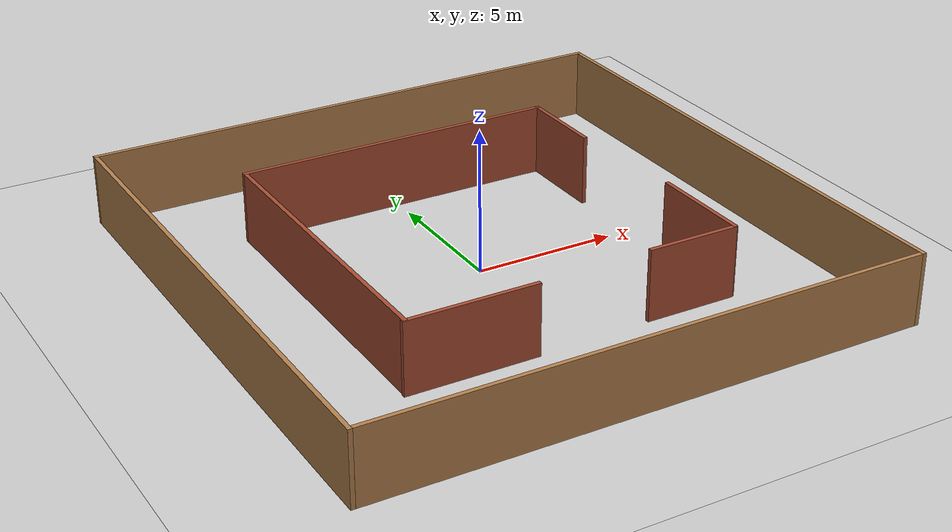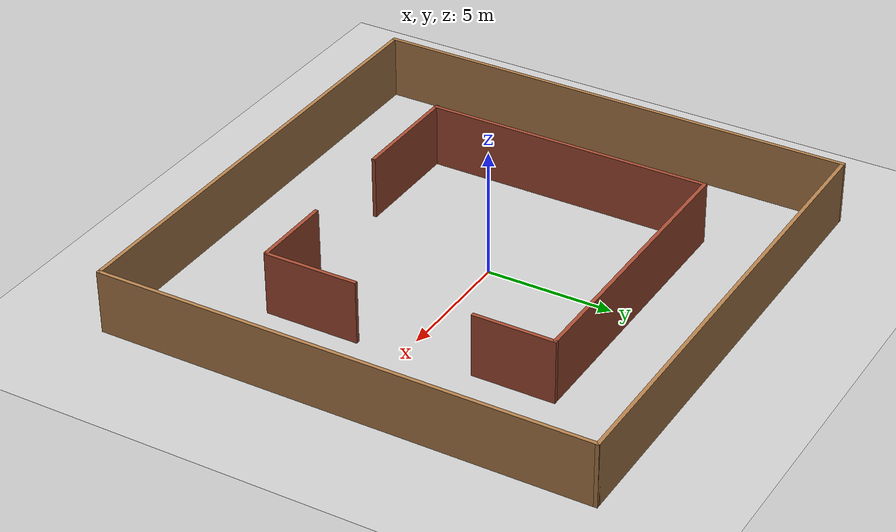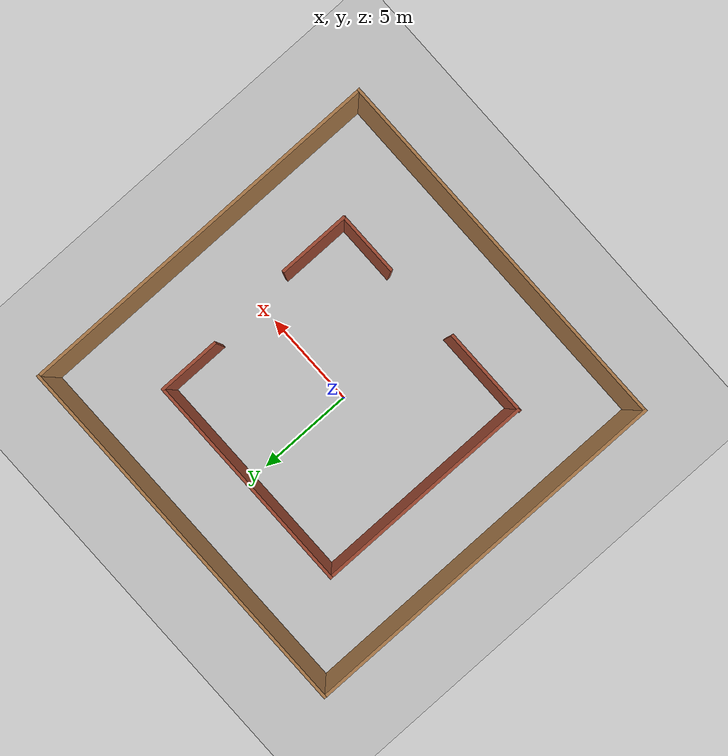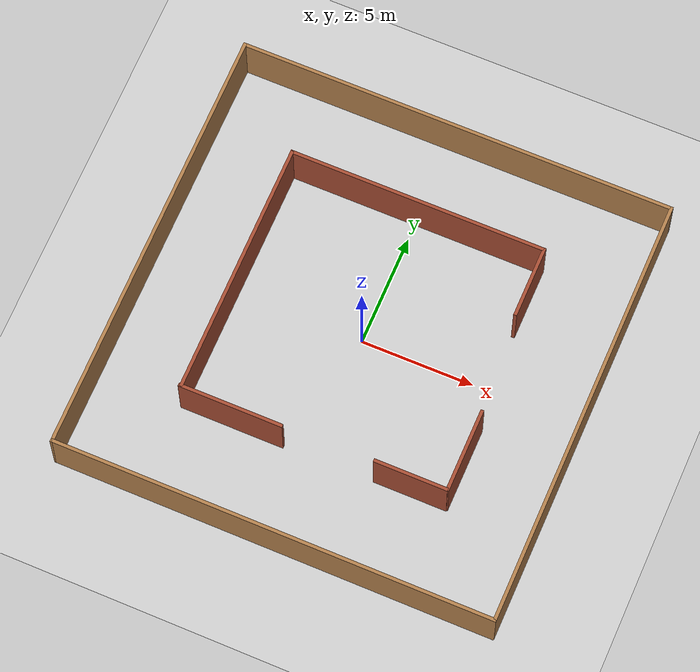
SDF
<sdf version="1.7">
 <world name="default">
  <light name="sun" type="directional">
   <pose>0 0 10 0 -0 0</pose>
   <diffuse>0.8 0.8 0.8 1</diffuse>
   <specular>0.2 0.2 0.2 1</specular>
   <attenuation>
    <range>1000</range>
    <constant>0.9</constant>
    <linear>0.01</linear>
    <quadratic>0.001</quadratic>
   </attenuation>
   <direction>-0.5 0.1 -0.9</direction>
   <spot><inner_angle>0</inner_angle><outer_angle>0</outer_angle><falloff>0</falloff></spot>
  </light>
  <model name="ground_plane">
   <static>1</static>
   <link name="link">
    <collision name="collision">
     <geometry><plane><normal>0 0 1</normal><size>100 100</size></plane></geometry>
     <surface>
      <contact><collide_bitmask>65535</collide_bitmask></contact>
      <friction><ode><mu>100</mu><mu2>50</mu2></ode></friction>
     </surface>
    </collision>
    <visual name="visual">
     <cast_shadows>0</cast_shadows>
     <geometry><plane><normal>0 0 1</normal><size>100 100</size></plane></geometry>
     <material>
      <script><uri>file://media/materials/scripts/gazebo.material</uri><name>Gazebo/Grey</name></script>
     </material>
    </visual>
   </link>
  </model>
  <gravity>0 0 -9.8</gravity>
  <magnetic_field>6e-06 2.3e-05 -4.2e-05</magnetic_field>
  <atmosphere type="adiabatic"/>
  <physics type="ode">
   <max_step_size>0.001</max_step_size>
   <real_time_factor>1</real_time_factor>
   <real_time_update_rate>1000</real_time_update_rate>
  </physics>
  <scene><ambient>0.4 0.4 0.4 1</ambient><background>0.7 0.7 0.7 1</background><shadows>1</shadows></scene>
  <spherical_coordinates>
   <surface_model>EARTH_WGS84</surface_model>
   <latitude_deg>0</latitude_deg>
   <longitude_deg>0</longitude_deg>
   <elevation>0</elevation>
   <heading_deg>0</heading_deg>
  </spherical_coordinates>
  <model name="world">
   <pose>0.20833 -0.077705 0 0 -0 0</pose>
   <link name="Wall_0">
    <collision name="Wall_0_Collision">
     <geometry><box><size>19.5 0.15 2.5</size></box></geometry>
     <pose>0 0 1.25 0 -0 0</pose>
    </collision>
    <visual name="Wall_0_Visual">
     <pose>0 0 1.25 0 -0 0</pose>
     <geometry><box><size>19.5 0.15 2.5</size></box></geometry>
     <material>
      <script><uri>file://media/materials/scripts/gazebo.material</uri><name>Gazebo/Wood</name></script>
      <ambient>1 1 1 1</ambient>
     </material>
     <meta><layer>0</layer></meta>
    </visual>
    <pose>-0 9.675 0 0 -0 0</pose>
   </link>
   <link name="Wall_10">
    <collision name="Wall_10_Collision">
     <geometry><box><size>3.75 0.15 2.5</size></box></geometry>
     <pose>0 0 1.25 0 -0 0</pose>
    </collision>
    <visual name="Wall_10_Visual">
     <pose>0 0 1.25 0 -0 0</pose>
     <geometry><box><size>3.75 0.15 2.5</size></box></geometry>
     <material>
      <script><uri>file://media/materials/scripts/gazebo.material</uri><name>Gazebo/Bricks</name></script>
      <ambient>1 1 1 1</ambient>
     </material>
     <meta><layer>0</layer></meta>
    </visual>
    <pose>5.85621 -3.52982 0 0 -0 -1.5708</pose>
   </link>
   <link name="Wall_12">
    <collision name="Wall_12_Collision">
     <geometry><box><size>3.25 0.15 2.5</size></box></geometry>
     <pose>0 0 1.25 0 -0 0</pose>
    </collision>
    <visual name="Wall_12_Visual">
     <pose>0 0 1.25 0 -0 0</pose>
     <geometry><box><size>3.25 0.15 2.5</size></box></geometry>
     <material>
      <script><uri>file://media/materials/scripts/gazebo.material</uri><name>Gazebo/Bricks</name></script>
      <ambient>1 1 1 1</ambient>
     </material>
     <meta><layer>0</layer></meta>
    </visual>
    <pose>4.25068 -5.36041 0 0 -0 0</pose>
   </link>
   <link name="Wall_14">
    <collision name="Wall_14_Collision">
     <geometry><box><size>3.25 0.15 2.5</size></box></geometry>
     <pose>0 0 1.25 0 -0 0</pose>
    </collision>
    <visual name="Wall_14_Visual">
     <pose>0 0 1.25 0 -0 0</pose>
     <geometry><box><size>3.25 0.15 2.5</size></box></geometry>
     <material>
      <script><uri>file://media/materials/scripts/gazebo.material</uri><name>Gazebo/Bricks</name></script>
      <ambient>1 1 1 1</ambient>
     </material>
     <meta><layer>0</layer></meta>
    </visual>
    <pose>5.50505 4.33438 0 0 -0 -1.5708</pose>
   </link>
   <link name="Wall_2">
    <collision name="Wall_2_Collision">
     <geometry><box><size>19.5 0.15 2.5</size></box></geometry>
     <pose>0 0 1.25 0 -0 0</pose>
    </collision>
    <visual name="Wall_2_Visual">
     <pose>0 0 1.25 0 -0 0</pose>
     <geometry><box><size>19.5 0.15 2.5</size></box></geometry>
     <material>
      <script><uri>file://media/materials/scripts/gazebo.material</uri><name>Gazebo/Wood</name></script>
      <ambient>1 1 1 1</ambient>
     </material>
     <meta><layer>0</layer></meta>
    </visual>
    <pose>-9.675 0 0 0 -0 -1.5708</pose>
   </link>
   <link name="Wall_3">
    <collision name="Wall_3_Collision">
     <geometry><box><size>19.5 0.15 2.5</size></box></geometry>
     <pose>0 0 1.25 0 -0 0</pose>
    </collision>
    <visual name="Wall_3_Visual">
     <pose>0 0 1.25 0 -0 0</pose>
     <geometry><box><size>19.5 0.15 2.5</size></box></geometry>
     <material>
      <script><uri>file://media/materials/scripts/gazebo.material</uri><name>Gazebo/Wood</name></script>
      <ambient>1 1 1 1</ambient>
     </material>
     <meta><layer>0</layer></meta>
    </visual>
    <pose>-0 -9.675 0 0 -0 0</pose>
   </link>
   <link name="Wall_4">
    <collision name="Wall_4_Collision">
     <geometry><box><size>19.5 0.15 2.5</size></box></geometry>
     <pose>0 0 1.25 0 -0 0</pose>
    </collision>
    <visual name="Wall_4_Visual">
     <pose>0 0 1.25 0 -0 0</pose>
     <geometry><box><size>19.5 0.15 2.5</size></box></geometry>
     <material>
      <script><uri>file://media/materials/scripts/gazebo.material</uri><name>Gazebo/Wood</name></script>
      <ambient>1 1 1 1</ambient>
     </material>
     <meta><layer>0</layer></meta>
    </visual>
    <pose>9.675 0 0 0 -0 1.5708</pose>
   </link>
   <link name="Wall_6">
    <collision name="Wall_6_Collision">
     <geometry><box><size>11.5 0.15 2.5</size></box></geometry>
     <pose>0 0 1.25 0 -0 0</pose>
    </collision>
    <visual name="Wall_6_Visual">
     <pose>0 0 1.25 0 -0 0</pose>
     <geometry><box><size>11.5 0.15 2.5</size></box></geometry>
     <material>
      <script><uri>file://media/materials/scripts/gazebo.material</uri><name>Gazebo/Bricks</name></script>
      <ambient>1 1 1 1</ambient>
     </material>
     <meta><layer>0</layer></meta>
    </visual>
    <pose>-0.16995 5.88438 0 0 -0 3.14159</pose>
   </link>
   <link name="Wall_7">
    <collision name="Wall_7_Collision">
     <geometry><box><size>11.4159 0.15 2.5</size></box></geometry>
     <pose>0 0 1.25 0 -0 0</pose>
    </collision>
    <visual name="Wall_7_Visual">
     <pose>0 0 1.25 0 -0 0</pose>
     <geometry><box><size>11.4159 0.15 2.5</size></box></geometry>
     <material>
      <script><uri>file://media/materials/scripts/gazebo.material</uri><name>Gazebo/Bricks</name></script>
      <ambient>1 1 1 1</ambient>
     </material>
     <meta><layer>0</layer></meta>
    </visual>
    <pose>-5.84495 0.210952 0 0 -0 -1.5708</pose>
   </link>
   <link name="Wall_8">
    <collision name="Wall_8_Collision">
     <geometry><box><size>4.62137 0.15 2.5</size></box></geometry>
     <pose>0 0 1.25 0 -0 0</pose>
    </collision>
    <visual name="Wall_8_Visual">
     <pose>0 0 1.25 0 -0 0</pose>
     <geometry><box><size>4.62137 0.15 2.5</size></box></geometry>
     <material>
      <script><uri>file://media/materials/scripts/gazebo.material</uri><name>Gazebo/Bricks</name></script>
      <ambient>1 1 1 1</ambient>
     </material>
     <meta><layer>0</layer></meta>
    </visual>
    <pose>-3.64972 -5.46248 0 0 -0 0</pose>
   </link>
   <static>1</static>
  </model>
 </world>
</sdf>
